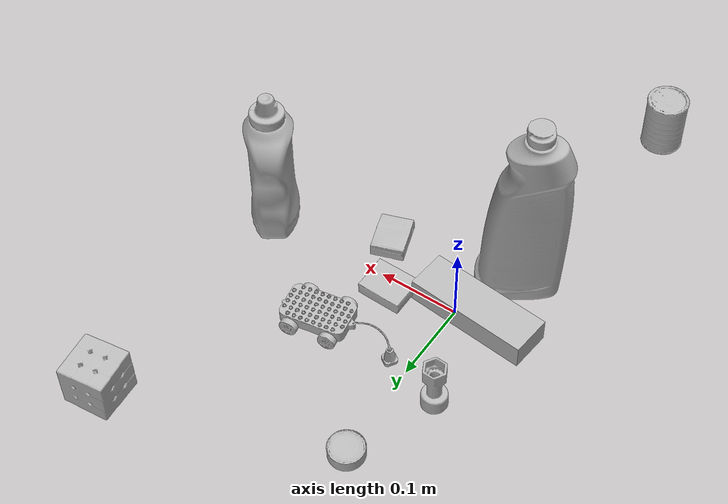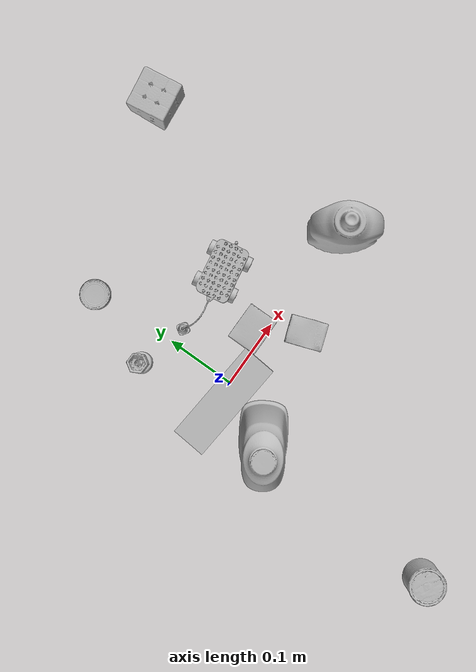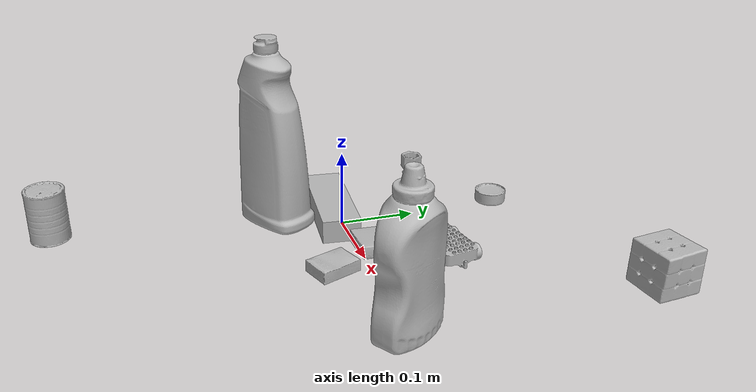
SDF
<sdf version="1.4">
  <world name="default">
    <light name="light1" type="point">
      <pose>0 0 1 0 0 0</pose>
      <diffuse>3 3 3 1</diffuse>
      <specular>3 3 3 1</specular>
    </light>
    <light name="light2" type="point">
      <pose>0 0.5 2 0 0 0</pose>
      <diffuse>1 1 1 1</diffuse>
      <specular>1 1 1 1</specular>
    </light>
    <light name="light3" type="point">
      <pose>0 0.5 2 0 0 0</pose>
      <diffuse>3 3 3 1</diffuse>
      <specular>3 3 3 1</specular>
    </light>
    <scene>
      <ambient>0.7 0.7 0.7</ambient>
    </scene>
    <model name="bottle1">
      <link name="link_bottle1">
        <collision name="default">
          <geometry>
            <mesh>
              <uri>model://mustard_bottle/collision_meshes/collision.obj</uri>
              <scale>1.0 1.0 1.0</scale>
            </mesh>
          </geometry>
          <surface>
            <friction>
              <ode>
                <mu>0.5</mu>
                <mu2>0.5</mu2>
              </ode>
            </friction>
          <contact>
        <ode>
            <max_vel>0</max_vel>
            <min_depth>0.0001</min_depth>
            <kp>1e8</kp>
        </ode>
    </contact></surface>
        </collision>
        <visual name="default">
          <geometry>
            <mesh>
              <uri>model://mustard_bottle/visual_meshes/visual.dae</uri>
              <scale>1.0 1.0 1.0</scale>
            </mesh>
          </geometry>
        </visual>
        <inertial>
          <mass>0.7866348028182983</mass>
          <pose>0.0005032454500906169 -0.00015647400869056582 -0.0174757931381464 0.00041823249995057767 0.0009465787698991903 0.02485370186883952</pose>
          <inertia>
            <ixx>0.0021843775</ixx>
            <iyy>0.0019166061</iyy>
            <izz>0.0005756938</izz>
            <ixy>0</ixy>
            <ixz>0</ixz>
            <iyz>0</iyz>
          </inertia>
        </inertial>
      </link>
      <pose>0.2602749764919281 -0.005084555130451918 0.09615202248096466 1.506045419477537e-05 1.6351582551870065e-05 -2.5477280210853266</pose>
    </model>
    <model name="bottle2">
      <link name="link_bottle2">
        <collision name="default">
          <geometry>
            <mesh>
              <uri>model://bleach_cleanser/collision_meshes/collision.obj</uri>
              <scale>1.0 1.0 1.0</scale>
            </mesh>
          </geometry>
          <surface>
            <friction>
              <ode>
                <mu>0.5</mu>
                <mu2>0.5</mu2>
              </ode>
            </friction>
          <contact>
        <ode>
            <max_vel>0</max_vel>
            <min_depth>0.0001</min_depth>
            <kp>1e8</kp>
        </ode>
    </contact></surface>
        </collision>
        <visual name="default">
          <geometry>
            <mesh>
              <uri>model://bleach_cleanser/visual_meshes/visual.dae</uri>
              <scale>1.0 1.0 1.0</scale>
            </mesh>
          </geometry>
        </visual>
        <inertial>
          <mass>1.5776710510253906</mass>
          <pose>0.00012193183647468686 0.003783883061259985 -0.02442161552608013 -0.07381671362264838 0.0004201168949340897 -0.006875045535038288</pose>
          <inertia>
            <ixx>0.007678755</ixx>
            <iyy>0.0071554743</iyy>
            <izz>0.0013128674</izz>
            <ixy>0</ixy>
            <ixz>0</ixz>
            <iyz>0</iyz>
          </inertia>
        </inertial>
      </link>
      <pose>-0.034252461045980453 -0.0818217322230339 0.12578417360782623 -0.0002011666252952856 1.5867829433208723e-05 2.1490715122427657</pose>
    </model>
    <model name="toy1">
      <link name="link_toy1">
        <collision name="default">
          <geometry>
            <mesh>
              <uri>model://g_lego_duplo/collision_meshes/collision.obj</uri>
              <scale>0.5 0.5 0.5</scale>
            </mesh>
          </geometry>
          <surface>
            <friction>
              <ode>
                <mu>0.5</mu>
                <mu2>0.5</mu2>
              </ode>
            </friction>
          <contact>
        <ode>
            <max_vel>0</max_vel>
            <min_depth>0.0001</min_depth>
            <kp>1e8</kp>
        </ode>
    </contact></surface>
        </collision>
        <visual name="default">
          <geometry>
            <mesh>
              <uri>model://g_lego_duplo/visual_meshes/visual.dae</uri>
              <scale>0.5 0.5 0.5</scale>
            </mesh>
          </geometry>
        </visual>
        <inertial>
          <mass>0.06580430269241333</mass>
          <pose>-0.025023844093084335 0.0008777321199886501 0.0019403373589739203 0.010962977320182745 0.038108249742412996 -0.09653031078073558</pose>
          <inertia>
            <ixx>2.3837789e-05</ixx>
            <iyy>7.206929e-05</iyy>
            <izz>9.016138e-05</izz>
            <ixy>0</ixy>
            <ixz>0</ixz>
            <iyz>0</iyz>
          </inertia>
        </inertial>
      </link>
      <pose>0.09050960093736649 0.09440166503190994 0.014910792000591755 0.0004137007313863323 -0.002334534483555638 -2.972322870517921</pose>
    </model>
    <model name="toy2">
      <link name="link_toy2">
        <collision name="default">
          <geometry>
            <mesh>
              <uri>model://c_toy_airplane/collision_meshes/collision.obj</uri>
              <scale>1.0 1.0 1.0</scale>
            </mesh>
          </geometry>
          <surface>
            <friction>
              <ode>
                <mu>0.5</mu>
                <mu2>0.5</mu2>
              </ode>
            </friction>
          <contact>
        <ode>
            <max_vel>0</max_vel>
            <min_depth>0.0001</min_depth>
            <kp>1e8</kp>
        </ode>
    </contact></surface>
        </collision>
        <visual name="default">
          <geometry>
            <mesh>
              <uri>model://c_toy_airplane/visual_meshes/visual.dae</uri>
              <scale>1.0 1.0 1.0</scale>
            </mesh>
          </geometry>
        </visual>
        <inertial>
          <mass>0.012545601464807987</mass>
          <pose>-0.00023024262918625027 -4.4310368707556336e-07 -0.0060805282555520535 -0.006192226732466636 -0.01679790977646328 0.7654621556572541</pose>
          <inertia>
            <ixx>5.760684e-06</ixx>
            <iyy>5.744425e-06</iyy>
            <izz>1.3524945e-06</izz>
            <ixy>0</ixy>
            <ixz>0</ixz>
            <iyz>0</iyz>
          </inertia>
        </inertial>
      </link>
      <pose>-0.04830171912908554 0.1160072609782219 0.03351268172264099 -0.00017019374880988502 -1.6103473840710543e-05 -2.89221381881357</pose>
    </model>
    <model name="can1">
      <link name="link_can1">
        <collision name="default">
          <geometry>
            <mesh>
              <uri>model://tuna_fish_can/collision_meshes/collision.obj</uri>
              <scale>0.5 0.5 0.5</scale>
            </mesh>
          </geometry>
          <surface>
            <friction>
              <ode>
                <mu>0.5</mu>
                <mu2>0.5</mu2>
              </ode>
            </friction>
          <contact>
        <ode>
            <max_vel>0</max_vel>
            <min_depth>0.0001</min_depth>
            <kp>1e8</kp>
        </ode>
    </contact></surface>
        </collision>
        <visual name="default">
          <geometry>
            <mesh>
              <uri>model://tuna_fish_can/visual_meshes/visual.dae</uri>
              <scale>0.5 0.5 0.5</scale>
            </mesh>
          </geometry>
        </visual>
        <inertial>
          <mass>0.0216250978410244</mass>
          <pose>-2.036200021393597e-05 -7.256498065544292e-06 -0.0005269024986773729 -0.0017944779234091367 0.00017161663308651613 0.24053681665098822</pose>
          <inertia>
            <ixx>2.923745e-06</ixx>
            <iyy>2.9115588e-06</iyy>
            <izz>5.002946e-06</izz>
            <ixy>0</ixy>
            <ixz>0</ixz>
            <iyz>0</iyz>
          </inertia>
        </inertial>
      </link>
      <pose>-0.008163601160049438 0.22284170985221863 0.008519995957612991 3.79459806569177e-09 3.302534322844576e-09 2.2195441809506122</pose>
    </model>
    <model name="can2">
      <link name="link_can2">
        <collision name="default">
          <geometry>
            <mesh>
              <uri>model://master_chef_can/collision_meshes/collision.obj</uri>
              <scale>0.5 0.5 0.5</scale>
            </mesh>
          </geometry>
          <surface>
            <friction>
              <ode>
                <mu>0.5</mu>
                <mu2>0.5</mu2>
              </ode>
            </friction>
          <contact>
        <ode>
            <max_vel>0</max_vel>
            <min_depth>0.0001</min_depth>
            <kp>1e8</kp>
        </ode>
    </contact></surface>
        </collision>
        <visual name="default">
          <geometry>
            <mesh>
              <uri>model://master_chef_can/visual_meshes/visual.dae</uri>
              <scale>0.5 0.5 0.5</scale>
            </mesh>
          </geometry>
        </visual>
        <inertial>
          <mass>0.16779577732086182</mass>
          <pose>-4.661964703700505e-05 1.3926845099376806e-07 -5.080012488178909e-05 -0.001799515621871614 0.0006479176547847844 -0.610266079213139</pose>
          <inertia>
            <ixx>9.848473e-05</ixx>
            <iyy>9.77599e-05</iyy>
            <izz>5.442035e-05</izz>
            <ixy>0</ixy>
            <ixz>0</ixz>
            <iyz>0</iyz>
          </inertia>
        </inertial>
      </link>
      <pose>-0.06567981839179993 -0.37363576889038086 0.03530197590589523 -1.6288655666073483e-06 -8.305406066437312e-07 0.05270649497187335</pose>
    </model>
    <model name="box1">
      <link name="link_box1">
        <collision name="default">
          <geometry>
            <mesh>
              <uri>model://rubiks_cube/collision_meshes/collision.obj</uri>
              <scale>1.0 1.0 1.0</scale>
            </mesh>
          </geometry>
          <surface>
            <friction>
              <ode>
                <mu>0.5</mu>
                <mu2>0.5</mu2>
              </ode>
            </friction>
          <contact>
        <ode>
            <max_vel>0</max_vel>
            <min_depth>0.0001</min_depth>
            <kp>1e8</kp>
        </ode>
    </contact></surface>
        </collision>
        <visual name="default">
          <geometry>
            <mesh>
              <uri>model://rubiks_cube/visual_meshes/visual.dae</uri>
              <scale>1.0 1.0 1.0</scale>
            </mesh>
          </geometry>
        </visual>
        <inertial>
          <mass>0.232398122549057</mass>
          <pose>2.6721041649580002e-05 5.256967051536776e-05 -7.264316082000732e-06 -0.05467303663832053 -0.0981402329670775 -0.034454960240128486</pose>
          <inertia>
            <ixx>0.00012841556</ixx>
            <iyy>0.00012781669</iyy>
            <izz>0.00012947968</izz>
            <ixy>0</ixy>
            <ixz>0</ixz>
            <iyz>0</iyz>
          </inertia>
        </inertial>
      </link>
      <pose>0.25999242067337036 0.308977335691452 0.02867898903787136 -1.6398996186003628e-06 2.8606524610219736e-07 1.7015718471308952</pose>
    </model>
    <model name="box2">
      <link name="link_box2">
        <collision name="default">
          <geometry>
            <mesh>
              <uri>model://jenga/collision_meshes/collision.obj</uri>
              <scale>1.0 1.0 1.0</scale>
            </mesh>
          </geometry>
          <surface>
            <friction>
              <ode>
                <mu>0.5</mu>
                <mu2>0.5</mu2>
              </ode>
            </friction>
          <contact>
        <ode>
            <max_vel>0</max_vel>
            <min_depth>0.0001</min_depth>
            <kp>1e8</kp>
        </ode>
    </contact></surface>
        </collision>
        <visual name="default">
          <geometry>
            <mesh>
              <uri>model://jenga/visual_meshes/visual.dae</uri>
              <scale>1.0 1.0 1.0</scale>
            </mesh>
          </geometry>
        </visual>
        <inertial>
          <mass>0.2088489830493927</mass>
          <pose>-2.502855807051674e-07 -0.0001025000965455547 -4.092339804628864e-05 0.0 -7.342154049184251e-07 0.0</pose>
          <inertia>
            <ixx>5.7793575e-05</ixx>
            <iyy>0.00039160773</iyy>
            <izz>0.00041807455</izz>
            <ixy>0</ixy>
            <ixz>0</ixz>
            <iyz>0</iyz>
          </inertia>
        </inertial>
      </link>
      <pose>-0.02426399104297161 -0.008083018474280834 0.014999991282820702 2.8638905347791153e-06 -1.9323463246267515e-06 -0.0910238805180599</pose>
    </model>
    <model name="box3">
      <link name="link_box3">
        <collision name="default">
          <geometry>
            <mesh>
              <uri>model://cracker_box/collision_meshes/collision.obj</uri>
              <scale>0.25 0.25 0.25</scale>
            </mesh>
          </geometry>
          <surface>
            <friction>
              <ode>
                <mu>0.5</mu>
                <mu2>0.5</mu2>
              </ode>
            </friction>
          <contact>
        <ode>
            <max_vel>0</max_vel>
            <min_depth>0.0001</min_depth>
            <kp>1e8</kp>
        </ode>
    </contact></surface>
        </collision>
        <visual name="default">
          <geometry>
            <mesh>
              <uri>model://cracker_box/visual_meshes/visual.dae</uri>
              <scale>0.25 0.25 0.25</scale>
            </mesh>
          </geometry>
        </visual>
        <inertial>
          <mass>0.039105094969272614</mass>
          <pose>0.00023660340229980648 6.358561222441494e-05 -0.00042573834070935845 -0.0003162078884583708 -0.011106488668689832 0.0025467950032832675</pose>
          <inertia>
            <ixx>6.216619e-06</ixx>
            <iyy>1.0264859e-05</iyy>
            <izz>1.4648894e-05</izz>
            <ixy>0</ixy>
            <ixz>0</ixz>
            <iyz>0</iyz>
          </inertia>
        </inertial>
      </link>
      <pose>0.11835888773202896 -0.04645869880914688 0.009120453149080276 -0.011788013714280978 -0.007367134804648532 1.9098776796644794</pose>
    </model>
    <model name="box4">
      <link name="link_box4">
        <collision name="default">
          <geometry>
            <mesh>
              <uri>model://pudding_box/collision_meshes/collision.obj</uri>
              <scale>0.5 0.5 0.5</scale>
            </mesh>
          </geometry>
          <surface>
            <friction>
              <ode>
                <mu>0.5</mu>
                <mu2>0.5</mu2>
              </ode>
            </friction>
          <contact>
        <ode>
            <max_vel>0</max_vel>
            <min_depth>0.0001</min_depth>
            <kp>1e8</kp>
        </ode>
    </contact></surface>
        </collision>
        <visual name="default">
          <geometry>
            <mesh>
              <uri>model://pudding_box/visual_meshes/visual.dae</uri>
              <scale>0.5 0.5 0.5</scale>
            </mesh>
          </geometry>
        </visual>
        <inertial>
          <mass>0.03813362866640091</mass>
          <pose>0.00024474109522998333 0.00040339428232982755 -0.0002594413817860186 0.005213101815861678 -0.006603796390356506 0.020079825165494957</pose>
          <inertia>
            <ixx>1.0777026e-05</ixx>
            <iyy>7.25086e-06</iyy>
            <izz>1.5915095e-05</izz>
            <ixy>0</ixy>
            <ixz>0</ixz>
            <iyz>0</iyz>
          </inertia>
        </inertial>
      </link>
      <pose>0.07955067604780197 0.01735740900039673 0.009862947277724743 0.022286156518305452 -0.011402427763681921 -1.5716416525396901</pose>
    </model>
  <physics type="ode">
      <max_contacts>50</max_contacts>
      <ode>
        <solver>
          <type>quick</type>
          <iters>75</iters>
        </solver>
        <constraints>
          <contact_max_correcting_vel>0</contact_max_correcting_vel>
          <contact_surface_layer>0</contact_surface_layer>
        </constraints>
      </ode>
    </physics></world>
</sdf>
